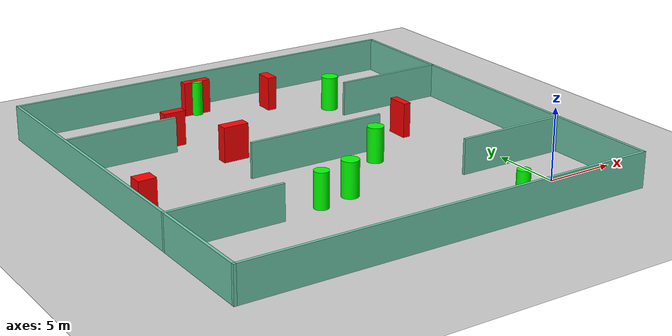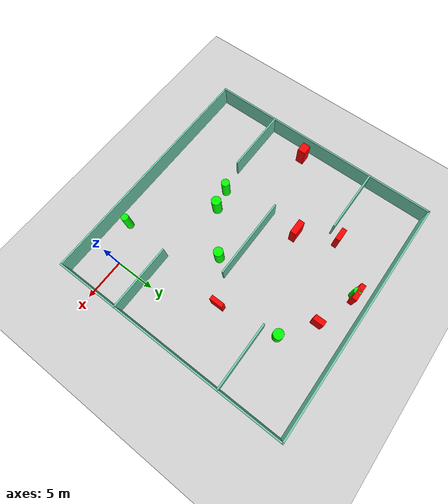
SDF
<sdf version="1.7">
 <world name="default">
  <light name="sun" type="directional">
   <pose>0 0 10 0 -0 0</pose>
   <diffuse>0.8 0.8 0.8 1</diffuse>
   <specular>0.2 0.2 0.2 1</specular>
   <attenuation>
    <range>1000</range>
    <constant>0.9</constant>
    <linear>0.01</linear>
    <quadratic>0.001</quadratic>
   </attenuation>
   <direction>-0.5 0.1 -0.9</direction>
   <spot><inner_angle>0</inner_angle><outer_angle>0</outer_angle><falloff>0</falloff></spot>
  </light>
  <model name="ground_plane">
   <static>1</static>
   <link name="link">
    <collision name="collision">
     <geometry><plane><normal>0 0 1</normal><size>100 100</size></plane></geometry>
     <surface>
      <contact><collide_bitmask>65535</collide_bitmask></contact>
      <friction><ode><mu>100</mu><mu2>50</mu2></ode></friction>
     </surface>
    </collision>
    <visual name="visual">
     <cast_shadows>0</cast_shadows>
     <geometry><plane><normal>0 0 1</normal><size>100 100</size></plane></geometry>
     <material>
      <script><uri>file://media/materials/scripts/gazebo.material</uri><name>Gazebo/Grey</name></script>
     </material>
    </visual>
   </link>
  </model>
  <gravity>0 0 -9.8</gravity>
  <magnetic_field>6e-06 2.3e-05 -4.2e-05</magnetic_field>
  <atmosphere type="adiabatic"/>
  <physics type="ode">
   <max_step_size>0.001</max_step_size>
   <real_time_factor>1</real_time_factor>
   <real_time_update_rate>1000</real_time_update_rate>
  </physics>
  <scene><ambient>0.4 0.4 0.4 1</ambient><background>0.7 0.7 0.7 1</background><shadows>1</shadows></scene>
  <spherical_coordinates>
   <surface_model>EARTH_WGS84</surface_model>
   <latitude_deg>0</latitude_deg>
   <longitude_deg>0</longitude_deg>
   <elevation>0</elevation>
   <heading_deg>0</heading_deg>
  </spherical_coordinates>
  <model name="my_base_walls">
   <link name="Wall_10">
    <collision name="Wall_10_Collision">
     <geometry><box><size>8.2 0.2 2.5</size></box></geometry>
     <pose>0 0 1.25 0 -0 0</pose>
    </collision>
    <visual name="Wall_10_Visual">
     <pose>0 0 1.25 0 -0 0</pose>
     <geometry><box><size>8.2 0.2 2.5</size></box></geometry>
     <material>
      <script><uri>file://media/materials/scripts/gazebo.material</uri><name>Gazebo/Grey</name></script>
      <ambient>0.435294 0.796078 0.67451 1</ambient>
     </material>
     <meta><layer>0</layer></meta>
    </visual>
    <pose>-11 -7 0 0 -0 0</pose>
   </link>
   <link name="Wall_12">
    <collision name="Wall_12_Collision">
     <geometry><box><size>8.2 0.2 2.5</size></box></geometry>
     <pose>0 0 1.25 0 -0 0</pose>
    </collision>
    <visual name="Wall_12_Visual">
     <pose>0 0 1.25 0 -0 0</pose>
     <geometry><box><size>8.2 0.2 2.5</size></box></geometry>
     <material>
      <script><uri>file://media/materials/scripts/gazebo.material</uri><name>Gazebo/Grey</name></script>
      <ambient>0.435294 0.796078 0.67451 1</ambient>
     </material>
     <meta><layer>0</layer></meta>
    </visual>
    <pose>-11 7 0 0 -0 0</pose>
   </link>
   <link name="Wall_14">
    <collision name="Wall_14_Collision">
     <geometry><box><size>8.2 0.2 2.5</size></box></geometry>
     <pose>0 0 1.25 0 -0 0</pose>
    </collision>
    <visual name="Wall_14_Visual">
     <pose>0 0 1.25 0 -0 0</pose>
     <geometry><box><size>8.2 0.2 2.5</size></box></geometry>
     <material>
      <script><uri>file://media/materials/scripts/gazebo.material</uri><name>Gazebo/Grey</name></script>
      <ambient>0.435294 0.796078 0.67451 1</ambient>
     </material>
     <meta><layer>0</layer></meta>
    </visual>
    <pose>11 7 0 0 -0 3.14159</pose>
   </link>
   <link name="Wall_16">
    <collision name="Wall_16_Collision">
     <geometry><box><size>10.2 0.2 2.5</size></box></geometry>
     <pose>0 0 1.25 0 -0 0</pose>
    </collision>
    <visual name="Wall_16_Visual">
     <pose>0 0 1.25 0 -0 0</pose>
     <geometry><box><size>10.2 0.2 2.5</size></box></geometry>
     <material>
      <script><uri>file://media/materials/scripts/gazebo.material</uri><name>Gazebo/Grey</name></script>
      <ambient>0.435294 0.796078 0.67451 1</ambient>
     </material>
     <meta><layer>0</layer></meta>
    </visual>
    <pose>0 0 0 0 -0 3.14159</pose>
   </link>
   <link name="Wall_2">
    <collision name="Wall_2_Collision">
     <geometry><box><size>30.2 0.2 2.5</size></box></geometry>
     <pose>0 0 1.25 0 -0 0</pose>
    </collision>
    <visual name="Wall_2_Visual">
     <pose>0 0 1.25 0 -0 0</pose>
     <geometry><box><size>30.2 0.2 2.5</size></box></geometry>
     <material>
      <script><uri>file://media/materials/scripts/gazebo.material</uri><name>Gazebo/Grey</name></script>
      <ambient>0.435294 0.796078 0.67451 1</ambient>
     </material>
     <meta><layer>0</layer></meta>
    </visual>
    <pose>0 -15 0 0 -0 3.14159</pose>
   </link>
   <link name="Wall_3">
    <collision name="Wall_3_Collision">
     <geometry><box><size>30.2 0.2 2.5</size></box></geometry>
     <pose>0 0 1.25 0 -0 0</pose>
    </collision>
    <visual name="Wall_3_Visual">
     <pose>0 0 1.25 0 -0 0</pose>
     <geometry><box><size>30.2 0.2 2.5</size></box></geometry>
     <material>
      <script><uri>file://media/materials/scripts/gazebo.material</uri><name>Gazebo/Grey</name></script>
      <ambient>0.435294 0.796078 0.67451 1</ambient>
     </material>
     <meta><layer>0</layer></meta>
    </visual>
    <pose>-15 0 0 0 -0 1.5708</pose>
   </link>
   <link name="Wall_4">
    <collision name="Wall_4_Collision">
     <geometry><box><size>30.2 0.2 2.5</size></box></geometry>
     <pose>0 0 1.25 0 -0 0</pose>
    </collision>
    <visual name="Wall_4_Visual">
     <pose>0 0 1.25 0 -0 0</pose>
     <geometry><box><size>30.2 0.2 2.5</size></box></geometry>
     <material>
      <script><uri>file://media/materials/scripts/gazebo.material</uri><name>Gazebo/Grey</name></script>
      <ambient>0.435294 0.796078 0.67451 1</ambient>
     </material>
     <meta><layer>0</layer></meta>
    </visual>
    <pose>0 15 0 0 -0 0</pose>
   </link>
   <link name="Wall_6">
    <collision name="Wall_6_Collision">
     <geometry><box><size>30.2 0.2 2.5</size></box></geometry>
     <pose>0 0 1.25 0 -0 0</pose>
    </collision>
    <visual name="Wall_6_Visual">
     <pose>0 0 1.25 0 -0 0</pose>
     <geometry><box><size>30.2 0.2 2.5</size></box></geometry>
     <material>
      <script><uri>file://media/materials/scripts/gazebo.material</uri><name>Gazebo/Grey</name></script>
      <ambient>0.435294 0.796078 0.67451 1</ambient>
     </material>
     <meta><layer>0</layer></meta>
    </visual>
    <pose>15 0 0 0 -0 1.5708</pose>
   </link>
   <link name="Wall_8">
    <collision name="Wall_8_Collision">
     <geometry><box><size>8.2 0.2 2.5</size></box></geometry>
     <pose>0 0 1.25 0 -0 0</pose>
    </collision>
    <visual name="Wall_8_Visual">
     <pose>0 0 1.25 0 -0 0</pose>
     <geometry><box><size>8.2 0.2 2.5</size></box></geometry>
     <material>
      <script><uri>file://media/materials/scripts/gazebo.material</uri><name>Gazebo/Grey</name></script>
      <ambient>0.435294 0.796078 0.67451 1</ambient>
     </material>
     <meta><layer>0</layer></meta>
    </visual>
    <pose>11 -7 0 0 -0 3.14159</pose>
   </link>
   <static>1</static>
   <pose>-11 11 0 0 -0 0</pose>
  </model>
  <model name="cylinder1">
   <static>1</static>
   <link name="link">
    <inertial>
     <mass>1</mass>
     <inertia><ixx>0.5</ixx><ixy>0</ixy><ixz>0</ixz><iyy>0.5</iyy><iyz>0</iyz><izz>1</izz></inertia>
    </inertial>
    <collision name="collision">
     <geometry><cylinder><radius>0.6115055175150612</radius><length>2.5</length></cylinder></geometry>
    </collision>
    <visual name="visual">
     <geometry><cylinder><radius>0.6115055175150612</radius><length>2.5</length></cylinder></geometry>
     <material>
      <ambient>0 1 0 1</ambient>
      <diffuse>0 1 0 1</diffuse>
      <specular>0.1 0.1 0.1 1</specular>
      <emissive>0 0 0 0</emissive>
     </material>
    </visual>
   </link>
   <pose>-4.118478101126836 19.828701096077904 1.25 0 0 0</pose>
  </model>
  <model name="cylinder2">
   <static>1</static>
   <link name="link">
    <inertial>
     <mass>1</mass>
     <inertia><ixx>0.5</ixx><ixy>0</ixy><ixz>0</ixz><iyy>0.5</iyy><iyz>0</iyz><izz>1</izz></inertia>
    </inertial>
    <collision name="collision">
     <geometry><cylinder><radius>0.5133688597904852</radius><length>2.5</length></cylinder></geometry>
    </collision>
    <visual name="visual">
     <geometry><cylinder><radius>0.5133688597904852</radius><length>2.5</length></cylinder></geometry>
     <material>
      <ambient>0 1 0 1</ambient>
      <diffuse>0 1 0 1</diffuse>
      <specular>0.1 0.1 0.1 1</specular>
      <emissive>0 0 0 0</emissive>
     </material>
    </visual>
   </link>
   <pose>-14.914737201028787 4.491411927401142 1.25 0 0 0</pose>
  </model>
  <model name="cylinder3">
   <static>1</static>
   <link name="link">
    <inertial>
     <mass>1</mass>
     <inertia><ixx>0.5</ixx><ixy>0</ixy><ixz>0</ixz><iyy>0.5</iyy><iyz>0</iyz><izz>1</izz></inertia>
    </inertial>
    <collision name="collision">
     <geometry><cylinder><radius>0.6037239987963274</radius><length>2.5</length></cylinder></geometry>
    </collision>
    <visual name="visual">
     <geometry><cylinder><radius>0.6037239987963274</radius><length>2.5</length></cylinder></geometry>
     <material>
      <ambient>0 1 0 1</ambient>
      <diffuse>0 1 0 1</diffuse>
      <specular>0.1 0.1 0.1 1</specular>
      <emissive>0 0 0 0</emissive>
     </material>
    </visual>
   </link>
   <pose>-12.37639248004547 5.056596931603115 1.25 0 0 0</pose>
  </model>
  <model name="cylinder4">
   <static>1</static>
   <link name="link">
    <inertial>
     <mass>1</mass>
     <inertia><ixx>0.5</ixx><ixy>0</ixy><ixz>0</ixz><iyy>0.5</iyy><iyz>0</iyz><izz>1</izz></inertia>
    </inertial>
    <collision name="collision">
     <geometry><cylinder><radius>0.45232420222759523</radius><length>2.5</length></cylinder></geometry>
    </collision>
    <visual name="visual">
     <geometry><cylinder><radius>0.45232420222759523</radius><length>2.5</length></cylinder></geometry>
     <material>
      <ambient>0 1 0 1</ambient>
      <diffuse>0 1 0 1</diffuse>
      <specular>0.1 0.1 0.1 1</specular>
      <emissive>0 0 0 0</emissive>
     </material>
    </visual>
   </link>
   <pose>-4.400570824219283 -2.177783606255894 1.25 0 0 0</pose>
  </model>
  <model name="cylinder5">
   <static>1</static>
   <link name="link">
    <inertial>
     <mass>1</mass>
     <inertia><ixx>0.5</ixx><ixy>0</ixy><ixz>0</ixz><iyy>0.5</iyy><iyz>0</iyz><izz>1</izz></inertia>
    </inertial>
    <collision name="collision">
     <geometry><cylinder><radius>0.43760064856955944</radius><length>2.5</length></cylinder></geometry>
    </collision>
    <visual name="visual">
     <geometry><cylinder><radius>0.43760064856955944</radius><length>2.5</length></cylinder></geometry>
     <material>
      <ambient>0 1 0 1</ambient>
      <diffuse>0 1 0 1</diffuse>
      <specular>0.1 0.1 0.1 1</specular>
      <emissive>0 0 0 0</emissive>
     </material>
    </visual>
   </link>
   <pose>-12.976654784592519 24.133073887916055 1.25 0 0 0</pose>
  </model>
  <model name="cylinder6">
   <static>1</static>
   <link name="link">
    <inertial>
     <mass>1</mass>
     <inertia><ixx>0.5</ixx><ixy>0</ixy><ixz>0</ixz><iyy>0.5</iyy><iyz>0</iyz><izz>1</izz></inertia>
    </inertial>
    <collision name="collision">
     <geometry><cylinder><radius>0.5845959938798002</radius><length>2.5</length></cylinder></geometry>
    </collision>
    <visual name="visual">
     <geometry><cylinder><radius>0.5845959938798002</radius><length>2.5</length></cylinder></geometry>
     <material>
      <ambient>0 1 0 1</ambient>
      <diffuse>0 1 0 1</diffuse>
      <specular>0.1 0.1 0.1 1</specular>
      <emissive>0 0 0 0</emissive>
     </material>
    </visual>
   </link>
   <pose>-7.515905573976184 9.170822720677414 1.25 0 0 0</pose>
  </model>
  <model name="box1">
   <static>1</static>
   <link name="link">
    <inertial>
     <mass>1</mass>
     <inertia><ixx>0.083</ixx><ixy>0</ixy><ixz>0</ixz><iyy>0.083</iyy><iyz>0</iyz><izz>0.083</izz></inertia>
    </inertial>
    <collision name="collision">
     <geometry><box><size>0.6669659299462862 1.3296646025210959 2.5</size></box></geometry>
    </collision>
    <visual name="visual">
     <geometry><box><size>0.6669659299462862 1.3296646025210959 2.5</size></box></geometry>
     <material>
      <ambient>1 0 0 1</ambient>
      <diffuse>1 0 0 1</diffuse>
      <specular>0.1 0.1 0.1 1</specular>
      <emissive>0 0 0 0</emissive>
     </material>
    </visual>
    <sensor name="my_contact" type="contact">
     <contact><collision>box_collision</collision><topic>__default_topic__</topic></contact>
    </sensor>
   </link>
   <pose>-7.867587320000345 22.527495868787735 1.25 0 0 0</pose>
  </model>
  <model name="box2">
   <static>1</static>
   <link name="link">
    <inertial>
     <mass>1</mass>
     <inertia><ixx>0.083</ixx><ixy>0</ixy><ixz>0</ixz><iyy>0.083</iyy><iyz>0</iyz><izz>0.083</izz></inertia>
    </inertial>
    <collision name="collision">
     <geometry><box><size>0.5387271545233325 1.6240028139865723 2.5</size></box></geometry>
    </collision>
    <visual name="visual">
     <geometry><box><size>0.5387271545233325 1.6240028139865723 2.5</size></box></geometry>
     <material>
      <ambient>1 0 0 1</ambient>
      <diffuse>1 0 0 1</diffuse>
      <specular>0.1 0.1 0.1 1</specular>
      <emissive>0 0 0 0</emissive>
     </material>
    </visual>
    <sensor name="my_contact" type="contact">
     <contact><collision>box_collision</collision><topic>__default_topic__</topic></contact>
    </sensor>
   </link>
   <pose>-3.0116125852356284 12.509400753502403 1.25 0 0 0</pose>
  </model>
  <model name="box3">
   <static>1</static>
   <link name="link">
    <inertial>
     <mass>1</mass>
     <inertia><ixx>0.083</ixx><ixy>0</ixy><ixz>0</ixz><iyy>0.083</iyy><iyz>0</iyz><izz>0.083</izz></inertia>
    </inertial>
    <collision name="collision">
     <geometry><box><size>1.60807904444235 0.639580326881031 2.5</size></box></geometry>
    </collision>
    <visual name="visual">
     <geometry><box><size>1.60807904444235 0.639580326881031 2.5</size></box></geometry>
     <material>
      <ambient>1 0 0 1</ambient>
      <diffuse>1 0 0 1</diffuse>
      <specular>0.1 0.1 0.1 1</specular>
      <emissive>0 0 0 0</emissive>
     </material>
    </visual>
    <sensor name="my_contact" type="contact">
     <contact><collision>box_collision</collision><topic>__default_topic__</topic></contact>
    </sensor>
   </link>
   <pose>-17.51065687947289 19.205014547129252 1.25 0 0 0</pose>
  </model>
  <model name="box4">
   <static>1</static>
   <link name="link">
    <inertial>
     <mass>1</mass>
     <inertia><ixx>0.083</ixx><ixy>0</ixy><ixz>0</ixz><iyy>0.083</iyy><iyz>0</iyz><izz>0.083</izz></inertia>
    </inertial>
    <collision name="collision">
     <geometry><box><size>1.8679178082502181 0.7898964372499664 2.5</size></box></geometry>
    </collision>
    <visual name="visual">
     <geometry><box><size>1.8679178082502181 0.7898964372499664 2.5</size></box></geometry>
     <material>
      <ambient>1 0 0 1</ambient>
      <diffuse>1 0 0 1</diffuse>
      <specular>0.1 0.1 0.1 1</specular>
      <emissive>0 0 0 0</emissive>
     </material>
    </visual>
    <sensor name="my_contact" type="contact">
     <contact><collision>box_collision</collision><topic>__default_topic__</topic></contact>
    </sensor>
   </link>
   <pose>-15.282209097921948 14.689869707414417 1.25 0 0 0</pose>
  </model>
  <model name="box5">
   <static>1</static>
   <link name="link">
    <inertial>
     <mass>1</mass>
     <inertia><ixx>0.083</ixx><ixy>0</ixy><ixz>0</ixz><iyy>0.083</iyy><iyz>0</iyz><izz>0.083</izz></inertia>
    </inertial>
    <collision name="collision">
     <geometry><box><size>2.054748282267896 0.5941327647033284 2.5</size></box></geometry>
    </collision>
    <visual name="visual">
     <geometry><box><size>2.054748282267896 0.5941327647033284 2.5</size></box></geometry>
     <material>
      <ambient>1 0 0 1</ambient>
      <diffuse>1 0 0 1</diffuse>
      <specular>0.1 0.1 0.1 1</specular>
      <emissive>0 0 0 0</emissive>
     </material>
    </visual>
    <sensor name="my_contact" type="contact">
     <contact><collision>box_collision</collision><topic>__default_topic__</topic></contact>
    </sensor>
   </link>
   <pose>-12.974273280592243 24.322478537488795 1.25 0 0 0</pose>
  </model>
  <model name="box6">
   <static>1</static>
   <link name="link">
    <inertial>
     <mass>1</mass>
     <inertia><ixx>0.083</ixx><ixy>0</ixy><ixz>0</ixz><iyy>0.083</iyy><iyz>0</iyz><izz>0.083</izz></inertia>
    </inertial>
    <collision name="collision">
     <geometry><box><size>1.2685285563982227 1.0171575195166818 2.5</size></box></geometry>
    </collision>
    <visual name="visual">
     <geometry><box><size>1.2685285563982227 1.0171575195166818 2.5</size></box></geometry>
     <material>
      <ambient>1 0 0 1</ambient>
      <diffuse>1 0 0 1</diffuse>
      <specular>0.1 0.1 0.1 1</specular>
      <emissive>0 0 0 0</emissive>
     </material>
    </visual>
    <sensor name="my_contact" type="contact">
     <contact><collision>box_collision</collision><topic>__default_topic__</topic></contact>
    </sensor>
   </link>
   <pose>-24.561115505394838 9.431225456732596 1.25 0 0 0</pose>
  </model>
 </world>
</sdf>
